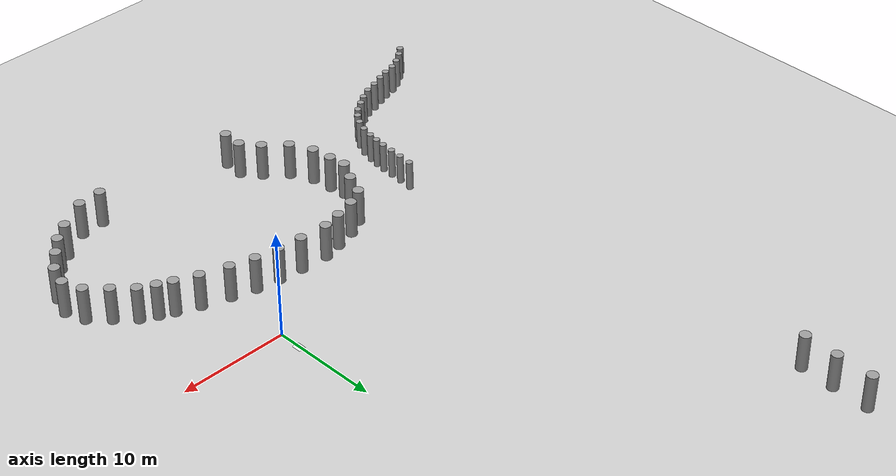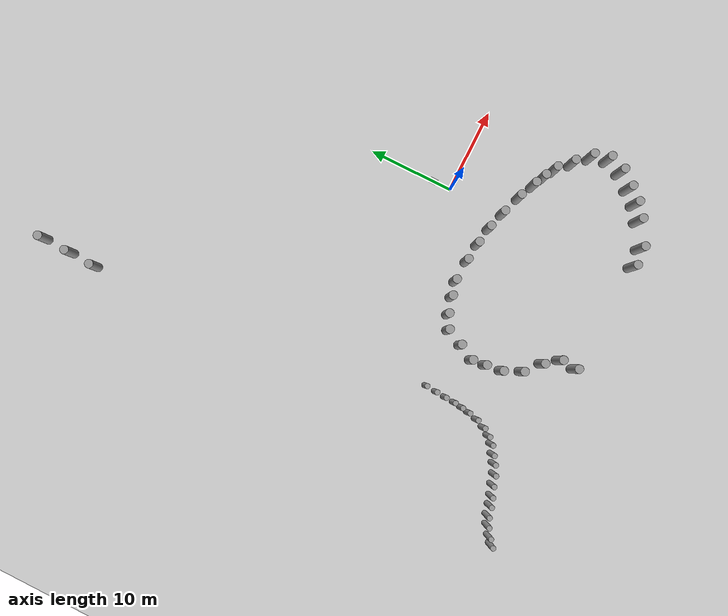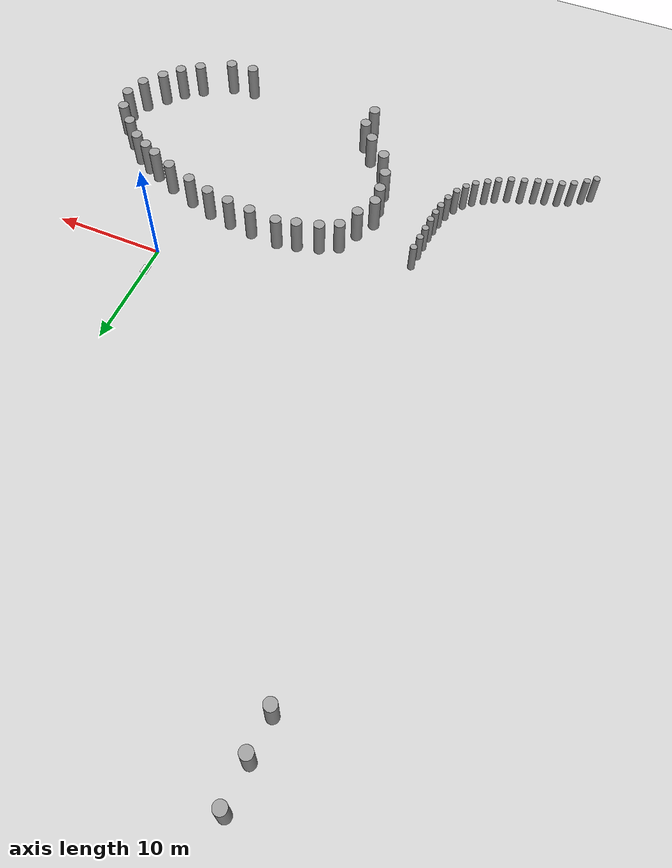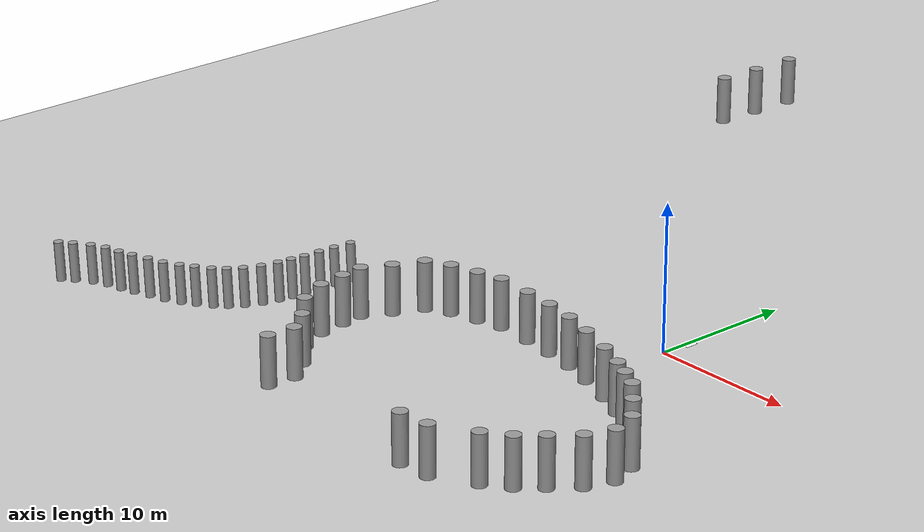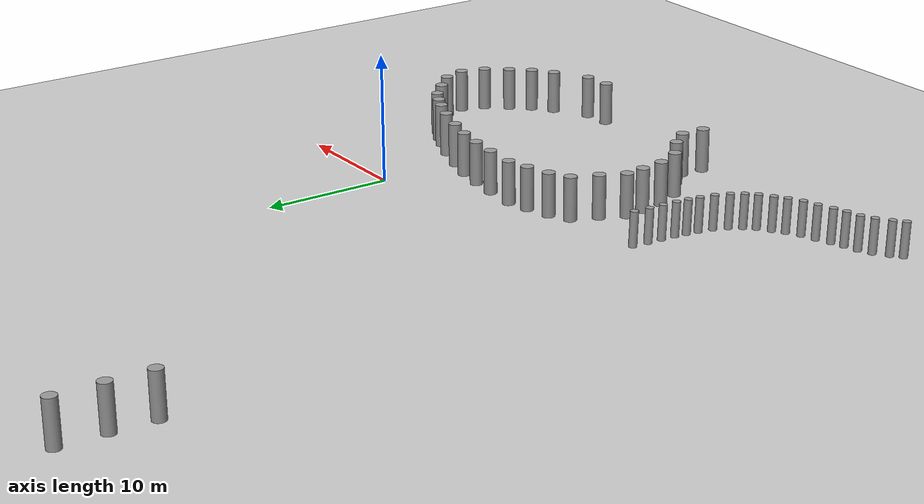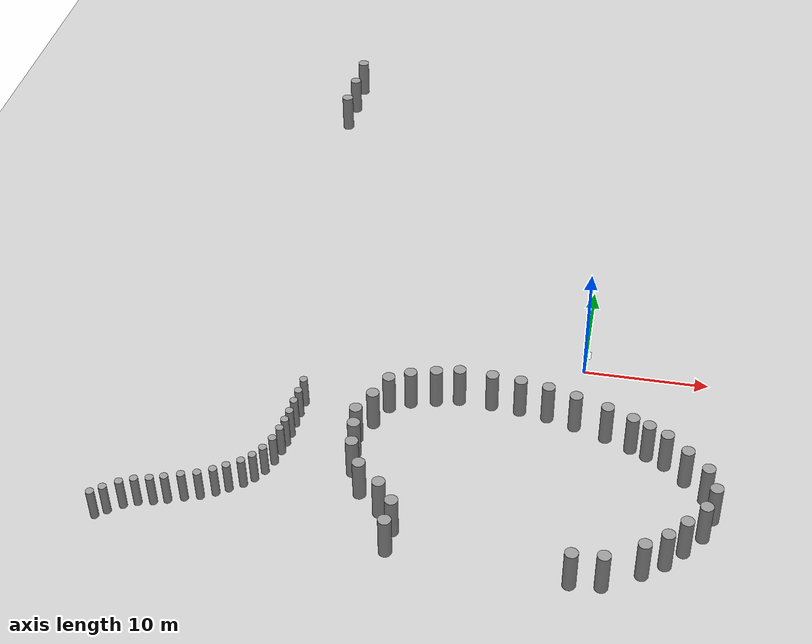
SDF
<sdf version="1.7">
 <world name="default">
  <model name="ground_plane">
   <static>1</static>
   <link name="link">
    <collision name="collision">
     <geometry><plane><normal>0 0 1</normal><size>100 100</size></plane></geometry>
     <surface>
      <contact><collide_bitmask>65535</collide_bitmask></contact>
      <friction><ode><mu>100</mu><mu2>50</mu2></ode></friction>
     </surface>
    </collision>
    <visual name="visual">
     <cast_shadows>0</cast_shadows>
     <geometry><plane><normal>0 0 1</normal><size>100 100</size></plane></geometry>
     <material>
      <script><uri>file://media/materials/scripts/gazebo.material</uri><name>Gazebo/Grey</name></script>
     </material>
    </visual>
   </link>
  </model>
  <model name="aruco_default">
   <static>1</static>
   <link name="aruco_link">
    <visual name="aruco_visual">
     <geometry><plane><normal>0 0 1</normal><size>0.68 0.9</size></plane></geometry>
     <material>
      <diffuse>1 1 1 1</diffuse>
      <specular>0.4 0.4 0.4 1</specular>
      <pbr><metal><albedo_map>materials/textures/pattern.png</albedo_map></metal></pbr>
     </material>
    </visual>
   </link>
   <pose>0.057366 2.14573 0 0 -0 0</pose>
  </model>
  <model name="unit_cylinder_clone_0_clone_37">
   <pose>-12.2662 -21.3267 1.7077 0 -0 -7e-06</pose>
   <link name="link">
    <inertial>
     <mass>1</mass>
     <inertia><ixx>0.145833</ixx><ixy>0</ixy><ixz>0</ixz><iyy>0.145833</iyy><iyz>0</iyz><izz>0.125</izz></inertia>
    </inertial>
    <collision name="collision">
     <geometry><cylinder><radius>0.5</radius><length>3.4154</length></cylinder></geometry>
    </collision>
    <visual name="visual">
     <geometry><cylinder><radius>0.5</radius><length>3.4154</length></cylinder></geometry>
     <material>
      <script><name>Gazebo/Grey</name><uri>file://media/materials/scripts/gazebo.material</uri></script>
     </material>
    </visual>
   </link>
  </model>
  <model name="unit_cylinder_clone_0_clone_39">
   <pose>-12.1496 -19.3923 1.7077 0 -0 -2.6e-05</pose>
   <link name="link">
    <inertial>
     <mass>1</mass>
     <inertia><ixx>0.145833</ixx><ixy>0</ixy><ixz>0</ixz><iyy>0.145833</iyy><iyz>0</iyz><izz>0.125</izz></inertia>
    </inertial>
    <collision name="collision">
     <geometry><cylinder><radius>0.5</radius><length>3.4154</length></cylinder></geometry>
    </collision>
    <visual name="visual">
     <geometry><cylinder><radius>0.5</radius><length>3.4154</length></cylinder></geometry>
     <material>
      <script><name>Gazebo/Grey</name><uri>file://media/materials/scripts/gazebo.material</uri></script>
     </material>
    </visual>
   </link>
  </model>
  <model name="unit_cylinder_clone_0_clone_42">
   <pose>0.987359 -22.1201 1.7077 0 -0 -2.1e-05</pose>
   <link name="link">
    <inertial>
     <mass>1</mass>
     <inertia><ixx>0.145833</ixx><ixy>0</ixy><ixz>0</ixz><iyy>0.145833</iyy><iyz>0</iyz><izz>0.125</izz></inertia>
    </inertial>
    <collision name="collision">
     <geometry><cylinder><radius>0.5</radius><length>3.4154</length></cylinder></geometry>
    </collision>
    <visual name="visual">
     <geometry><cylinder><radius>0.5</radius><length>3.4154</length></cylinder></geometry>
     <material>
      <script><name>Gazebo/Grey</name><uri>file://media/materials/scripts/gazebo.material</uri></script>
     </material>
    </visual>
   </link>
  </model>
  <model name="unit_cylinder_clone_0_clone_43">
   <pose>-13.3909 -17.7902 1.7077 0 -0 -7e-06</pose>
   <link name="link">
    <inertial>
     <mass>1</mass>
     <inertia><ixx>0.145833</ixx><ixy>0</ixy><ixz>0</ixz><iyy>0.145833</iyy><iyz>0</iyz><izz>0.125</izz></inertia>
    </inertial>
    <collision name="collision">
     <geometry><cylinder><radius>0.5</radius><length>3.4154</length></cylinder></geometry>
    </collision>
    <visual name="visual">
     <geometry><cylinder><radius>0.5</radius><length>3.4154</length></cylinder></geometry>
     <material>
      <script><name>Gazebo/Grey</name><uri>file://media/materials/scripts/gazebo.material</uri></script>
     </material>
    </visual>
   </link>
  </model>
  <model name="unit_cylinder_clone_0_clone_44">
   <pose>-15.1916 -16.1591 1.7077 0 -0 -5e-06</pose>
   <link name="link">
    <inertial>
     <mass>1</mass>
     <inertia><ixx>0.145833</ixx><ixy>0</ixy><ixz>0</ixz><iyy>0.145833</iyy><iyz>0</iyz><izz>0.125</izz></inertia>
    </inertial>
    <collision name="collision">
     <geometry><cylinder><radius>0.5</radius><length>3.4154</length></cylinder></geometry>
    </collision>
    <visual name="visual">
     <geometry><cylinder><radius>0.5</radius><length>3.4154</length></cylinder></geometry>
     <material>
      <script><name>Gazebo/Grey</name><uri>file://media/materials/scripts/gazebo.material</uri></script>
     </material>
    </visual>
   </link>
  </model>
  <model name="unit_cylinder_clone_0_clone_45">
   <pose>-16.1365 -14.0923 1.7077 0 -0 -1e-06</pose>
   <link name="link">
    <inertial>
     <mass>1</mass>
     <inertia><ixx>0.145833</ixx><ixy>0</ixy><ixz>0</ixz><iyy>0.145833</iyy><iyz>0</iyz><izz>0.125</izz></inertia>
    </inertial>
    <collision name="collision">
     <geometry><cylinder><radius>0.5</radius><length>3.4154</length></cylinder></geometry>
    </collision>
    <visual name="visual">
     <geometry><cylinder><radius>0.5</radius><length>3.4154</length></cylinder></geometry>
     <material>
      <script><name>Gazebo/Grey</name><uri>file://media/materials/scripts/gazebo.material</uri></script>
     </material>
    </visual>
   </link>
  </model>
  <model name="unit_cylinder_clone_0_clone_46">
   <pose>-16.3959 -12.1554 1.7077 0 -0 -2.7e-05</pose>
   <link name="link">
    <inertial>
     <mass>1</mass>
     <inertia><ixx>0.145833</ixx><ixy>0</ixy><ixz>0</ixz><iyy>0.145833</iyy><iyz>0</iyz><izz>0.125</izz></inertia>
    </inertial>
    <collision name="collision">
     <geometry><cylinder><radius>0.5</radius><length>3.4154</length></cylinder></geometry>
    </collision>
    <visual name="visual">
     <geometry><cylinder><radius>0.5</radius><length>3.4154</length></cylinder></geometry>
     <material>
      <script><name>Gazebo/Grey</name><uri>file://media/materials/scripts/gazebo.material</uri></script>
     </material>
    </visual>
   </link>
  </model>
  <model name="unit_cylinder_clone_0_clone_47">
   <pose>-16.5689 -10.5585 1.7077 0 -0 -3.4e-05</pose>
   <link name="link">
    <inertial>
     <mass>1</mass>
     <inertia><ixx>0.145833</ixx><ixy>0</ixy><ixz>0</ixz><iyy>0.145833</iyy><iyz>0</iyz><izz>0.125</izz></inertia>
    </inertial>
    <collision name="collision">
     <geometry><cylinder><radius>0.5</radius><length>3.4154</length></cylinder></geometry>
    </collision>
    <visual name="visual">
     <geometry><cylinder><radius>0.5</radius><length>3.4154</length></cylinder></geometry>
     <material>
      <script><name>Gazebo/Grey</name><uri>file://media/materials/scripts/gazebo.material</uri></script>
     </material>
    </visual>
   </link>
  </model>
  <model name="unit_cylinder_clone_0_clone_48">
   <pose>-15.6165 -8.73278 1.7077 0 -0 -1.9e-05</pose>
   <link name="link">
    <inertial>
     <mass>1</mass>
     <inertia><ixx>0.145833</ixx><ixy>0</ixy><ixz>0</ixz><iyy>0.145833</iyy><iyz>0</iyz><izz>0.125</izz></inertia>
    </inertial>
    <collision name="collision">
     <geometry><cylinder><radius>0.5</radius><length>3.4154</length></cylinder></geometry>
    </collision>
    <visual name="visual">
     <geometry><cylinder><radius>0.5</radius><length>3.4154</length></cylinder></geometry>
     <material>
      <script><name>Gazebo/Grey</name><uri>file://media/materials/scripts/gazebo.material</uri></script>
     </material>
    </visual>
   </link>
  </model>
  <model name="unit_cylinder_clone_0_clone_49">
   <pose>3.22404 -21.9689 1.7077 0 -0 -2.4e-05</pose>
   <link name="link">
    <inertial>
     <mass>1</mass>
     <inertia><ixx>0.145833</ixx><ixy>0</ixy><ixz>0</ixz><iyy>0.145833</iyy><iyz>0</iyz><izz>0.125</izz></inertia>
    </inertial>
    <collision name="collision">
     <geometry><cylinder><radius>0.5</radius><length>3.4154</length></cylinder></geometry>
    </collision>
    <visual name="visual">
     <geometry><cylinder><radius>0.5</radius><length>3.4154</length></cylinder></geometry>
     <material>
      <script><name>Gazebo/Grey</name><uri>file://media/materials/scripts/gazebo.material</uri></script>
     </material>
    </visual>
   </link>
  </model>
  <model name="unit_cylinder_clone_0_clone_50">
   <pose>5.93468 -20.4274 1.7077 0 -0 -2.3e-05</pose>
   <link name="link">
    <inertial>
     <mass>1</mass>
     <inertia><ixx>0.145833</ixx><ixy>0</ixy><ixz>0</ixz><iyy>0.145833</iyy><iyz>0</iyz><izz>0.125</izz></inertia>
    </inertial>
    <collision name="collision">
     <geometry><cylinder><radius>0.5</radius><length>3.4154</length></cylinder></geometry>
    </collision>
    <visual name="visual">
     <geometry><cylinder><radius>0.5</radius><length>3.4154</length></cylinder></geometry>
     <material>
      <script><name>Gazebo/Grey</name><uri>file://media/materials/scripts/gazebo.material</uri></script>
     </material>
    </visual>
   </link>
  </model>
  <model name="unit_cylinder_clone_0_clone_51">
   <pose>7.49589 -19.269 1.7077 0 -0 -3.3e-05</pose>
   <link name="link">
    <inertial>
     <mass>1</mass>
     <inertia><ixx>0.145833</ixx><ixy>0</ixy><ixz>0</ixz><iyy>0.145833</iyy><iyz>0</iyz><izz>0.125</izz></inertia>
    </inertial>
    <collision name="collision">
     <geometry><cylinder><radius>0.5</radius><length>3.4154</length></cylinder></geometry>
    </collision>
    <visual name="visual">
     <geometry><cylinder><radius>0.5</radius><length>3.4154</length></cylinder></geometry>
     <material>
      <script><name>Gazebo/Grey</name><uri>file://media/materials/scripts/gazebo.material</uri></script>
     </material>
    </visual>
   </link>
  </model>
  <model name="unit_cylinder_clone_0_clone_52">
   <pose>8.7415 -17.8501 1.7077 0 -0 -7e-06</pose>
   <link name="link">
    <inertial>
     <mass>1</mass>
     <inertia><ixx>0.145833</ixx><ixy>0</ixy><ixz>0</ixz><iyy>0.145833</iyy><iyz>0</iyz><izz>0.125</izz></inertia>
    </inertial>
    <collision name="collision">
     <geometry><cylinder><radius>0.5</radius><length>3.4154</length></cylinder></geometry>
    </collision>
    <visual name="visual">
     <geometry><cylinder><radius>0.5</radius><length>3.4154</length></cylinder></geometry>
     <material>
      <script><name>Gazebo/Grey</name><uri>file://media/materials/scripts/gazebo.material</uri></script>
     </material>
    </visual>
   </link>
  </model>
  <model name="unit_cylinder_clone_0_clone_53">
   <pose>10.0501 -16.2276 1.7077 0 -0 -1.5e-05</pose>
   <link name="link">
    <inertial>
     <mass>1</mass>
     <inertia><ixx>0.145833</ixx><ixy>0</ixy><ixz>0</ixz><iyy>0.145833</iyy><iyz>0</iyz><izz>0.125</izz></inertia>
    </inertial>
    <collision name="collision">
     <geometry><cylinder><radius>0.5</radius><length>3.4154</length></cylinder></geometry>
    </collision>
    <visual name="visual">
     <geometry><cylinder><radius>0.5</radius><length>3.4154</length></cylinder></geometry>
     <material>
      <script><name>Gazebo/Grey</name><uri>file://media/materials/scripts/gazebo.material</uri></script>
     </material>
    </visual>
   </link>
  </model>
  <model name="unit_cylinder_clone_0_clone_54">
   <pose>10.6912 -14.3447 1.7077 0 -0 -2.3e-05</pose>
   <link name="link">
    <inertial>
     <mass>1</mass>
     <inertia><ixx>0.145833</ixx><ixy>0</ixy><ixz>0</ixz><iyy>0.145833</iyy><iyz>0</iyz><izz>0.125</izz></inertia>
    </inertial>
    <collision name="collision">
     <geometry><cylinder><radius>0.5</radius><length>3.4154</length></cylinder></geometry>
    </collision>
    <visual name="visual">
     <geometry><cylinder><radius>0.5</radius><length>3.4154</length></cylinder></geometry>
     <material>
      <script><name>Gazebo/Grey</name><uri>file://media/materials/scripts/gazebo.material</uri></script>
     </material>
    </visual>
   </link>
  </model>
  <model name="unit_cylinder_clone_0_clone_55">
   <pose>10.0635 -12.4691 1.7077 0 -0 -2.3e-05</pose>
   <link name="link">
    <inertial>
     <mass>1</mass>
     <inertia><ixx>0.145833</ixx><ixy>0</ixy><ixz>0</ixz><iyy>0.145833</iyy><iyz>0</iyz><izz>0.125</izz></inertia>
    </inertial>
    <collision name="collision">
     <geometry><cylinder><radius>0.5</radius><length>3.4154</length></cylinder></geometry>
    </collision>
    <visual name="visual">
     <geometry><cylinder><radius>0.5</radius><length>3.4154</length></cylinder></geometry>
     <material>
      <script><name>Gazebo/Grey</name><uri>file://media/materials/scripts/gazebo.material</uri></script>
     </material>
    </visual>
   </link>
  </model>
  <model name="unit_cylinder_clone_0_clone_56">
   <pose>8.49972 -10.9151 1.7077 0 -0 -1.6e-05</pose>
   <link name="link">
    <inertial>
     <mass>1</mass>
     <inertia><ixx>0.145833</ixx><ixy>0</ixy><ixz>0</ixz><iyy>0.145833</iyy><iyz>0</iyz><izz>0.125</izz></inertia>
    </inertial>
    <collision name="collision">
     <geometry><cylinder><radius>0.5</radius><length>3.4154</length></cylinder></geometry>
    </collision>
    <visual name="visual">
     <geometry><cylinder><radius>0.5</radius><length>3.4154</length></cylinder></geometry>
     <material>
      <script><name>Gazebo/Grey</name><uri>file://media/materials/scripts/gazebo.material</uri></script>
     </material>
    </visual>
   </link>
  </model>
  <model name="unit_cylinder_clone_0_clone_57">
   <pose>6.92818 -9.46304 1.7077 0 -0 -1.9e-05</pose>
   <link name="link">
    <inertial>
     <mass>1</mass>
     <inertia><ixx>0.145833</ixx><ixy>0</ixy><ixz>0</ixz><iyy>0.145833</iyy><iyz>0</iyz><izz>0.125</izz></inertia>
    </inertial>
    <collision name="collision">
     <geometry><cylinder><radius>0.5</radius><length>3.4154</length></cylinder></geometry>
    </collision>
    <visual name="visual">
     <geometry><cylinder><radius>0.5</radius><length>3.4154</length></cylinder></geometry>
     <material>
      <script><name>Gazebo/Grey</name><uri>file://media/materials/scripts/gazebo.material</uri></script>
     </material>
    </visual>
   </link>
  </model>
  <model name="unit_cylinder_clone_0_clone_58">
   <pose>-14.7328 -6.78153 1.7077 0 -0 -2.1e-05</pose>
   <link name="link">
    <inertial>
     <mass>1</mass>
     <inertia><ixx>0.145833</ixx><ixy>0</ixy><ixz>0</ixz><iyy>0.145833</iyy><iyz>0</iyz><izz>0.125</izz></inertia>
    </inertial>
    <collision name="collision">
     <geometry><cylinder><radius>0.5</radius><length>3.4154</length></cylinder></geometry>
    </collision>
    <visual name="visual">
     <geometry><cylinder><radius>0.5</radius><length>3.4154</length></cylinder></geometry>
     <material>
      <script><name>Gazebo/Grey</name><uri>file://media/materials/scripts/gazebo.material</uri></script>
     </material>
    </visual>
   </link>
  </model>
  <model name="unit_cylinder_clone_0_clone_59">
   <pose>-13.1482 -5.97424 1.7077 0 -0 -2.3e-05</pose>
   <link name="link">
    <inertial>
     <mass>1</mass>
     <inertia><ixx>0.145833</ixx><ixy>0</ixy><ixz>0</ixz><iyy>0.145833</iyy><iyz>0</iyz><izz>0.125</izz></inertia>
    </inertial>
    <collision name="collision">
     <geometry><cylinder><radius>0.5</radius><length>3.4154</length></cylinder></geometry>
    </collision>
    <visual name="visual">
     <geometry><cylinder><radius>0.5</radius><length>3.4154</length></cylinder></geometry>
     <material>
      <script><name>Gazebo/Grey</name><uri>file://media/materials/scripts/gazebo.material</uri></script>
     </material>
    </visual>
   </link>
  </model>
  <model name="unit_cylinder_clone_0_clone_60">
   <pose>-11.2097 -5.44102 1.7077 0 -0 -2.1e-05</pose>
   <link name="link">
    <inertial>
     <mass>1</mass>
     <inertia><ixx>0.145833</ixx><ixy>0</ixy><ixz>0</ixz><iyy>0.145833</iyy><iyz>0</iyz><izz>0.125</izz></inertia>
    </inertial>
    <collision name="collision">
     <geometry><cylinder><radius>0.5</radius><length>3.4154</length></cylinder></geometry>
    </collision>
    <visual name="visual">
     <geometry><cylinder><radius>0.5</radius><length>3.4154</length></cylinder></geometry>
     <material>
      <script><name>Gazebo/Grey</name><uri>file://media/materials/scripts/gazebo.material</uri></script>
     </material>
    </visual>
   </link>
  </model>
  <model name="unit_cylinder_clone_0_clone_61">
   <pose>-9.41878 -5.0312 1.7077 0 -0 -2.1e-05</pose>
   <link name="link">
    <inertial>
     <mass>1</mass>
     <inertia><ixx>0.145833</ixx><ixy>0</ixy><ixz>0</ixz><iyy>0.145833</iyy><iyz>0</iyz><izz>0.125</izz></inertia>
    </inertial>
    <collision name="collision">
     <geometry><cylinder><radius>0.5</radius><length>3.4154</length></cylinder></geometry>
    </collision>
    <visual name="visual">
     <geometry><cylinder><radius>0.5</radius><length>3.4154</length></cylinder></geometry>
     <material>
      <script><name>Gazebo/Grey</name><uri>file://media/materials/scripts/gazebo.material</uri></script>
     </material>
    </visual>
   </link>
  </model>
  <model name="unit_cylinder_clone_0_clone_62">
   <pose>-6.82545 -5.18358 1.7077 0 -0 -1.5e-05</pose>
   <link name="link">
    <inertial>
     <mass>1</mass>
     <inertia><ixx>0.145833</ixx><ixy>0</ixy><ixz>0</ixz><iyy>0.145833</iyy><iyz>0</iyz><izz>0.125</izz></inertia>
    </inertial>
    <collision name="collision">
     <geometry><cylinder><radius>0.5</radius><length>3.4154</length></cylinder></geometry>
    </collision>
    <visual name="visual">
     <geometry><cylinder><radius>0.5</radius><length>3.4154</length></cylinder></geometry>
     <material>
      <script><name>Gazebo/Grey</name><uri>file://media/materials/scripts/gazebo.material</uri></script>
     </material>
    </visual>
   </link>
  </model>
  <model name="unit_cylinder_clone_0_clone_63">
   <pose>-4.57364 -5.42276 1.7077 0 -0 -1.7e-05</pose>
   <link name="link">
    <inertial>
     <mass>1</mass>
     <inertia><ixx>0.145833</ixx><ixy>0</ixy><ixz>0</ixz><iyy>0.145833</iyy><iyz>0</iyz><izz>0.125</izz></inertia>
    </inertial>
    <collision name="collision">
     <geometry><cylinder><radius>0.5</radius><length>3.4154</length></cylinder></geometry>
    </collision>
    <visual name="visual">
     <geometry><cylinder><radius>0.5</radius><length>3.4154</length></cylinder></geometry>
     <material>
      <script><name>Gazebo/Grey</name><uri>file://media/materials/scripts/gazebo.material</uri></script>
     </material>
    </visual>
   </link>
  </model>
  <model name="unit_cylinder_clone_0_clone_64">
   <pose>-2.37186 -5.79405 1.7077 0 -0 -7e-06</pose>
   <link name="link">
    <inertial>
     <mass>1</mass>
     <inertia><ixx>0.145833</ixx><ixy>0</ixy><ixz>0</ixz><iyy>0.145833</iyy><iyz>0</iyz><izz>0.125</izz></inertia>
    </inertial>
    <collision name="collision">
     <geometry><cylinder><radius>0.5</radius><length>3.4154</length></cylinder></geometry>
    </collision>
    <visual name="visual">
     <geometry><cylinder><radius>0.5</radius><length>3.4154</length></cylinder></geometry>
     <material>
      <script><name>Gazebo/Grey</name><uri>file://media/materials/scripts/gazebo.material</uri></script>
     </material>
    </visual>
   </link>
  </model>
  <model name="unit_cylinder_clone_0_clone_65">
   <pose>-0.18135 -6.42753 1.7077 0 -0 -2e-06</pose>
   <link name="link">
    <inertial>
     <mass>1</mass>
     <inertia><ixx>0.145833</ixx><ixy>0</ixy><ixz>0</ixz><iyy>0.145833</iyy><iyz>0</iyz><izz>0.125</izz></inertia>
    </inertial>
    <collision name="collision">
     <geometry><cylinder><radius>0.5</radius><length>3.4154</length></cylinder></geometry>
    </collision>
    <visual name="visual">
     <geometry><cylinder><radius>0.5</radius><length>3.4154</length></cylinder></geometry>
     <material>
      <script><name>Gazebo/Grey</name><uri>file://media/materials/scripts/gazebo.material</uri></script>
     </material>
    </visual>
   </link>
  </model>
  <model name="unit_cylinder_clone_0_clone_66">
   <pose>2.29234 -7.25771 1.7077 0 -0 -1.6e-05</pose>
   <link name="link">
    <inertial>
     <mass>1</mass>
     <inertia><ixx>0.145833</ixx><ixy>0</ixy><ixz>0</ixz><iyy>0.145833</iyy><iyz>0</iyz><izz>0.125</izz></inertia>
    </inertial>
    <collision name="collision">
     <geometry><cylinder><radius>0.5</radius><length>3.4154</length></cylinder></geometry>
    </collision>
    <visual name="visual">
     <geometry><cylinder><radius>0.5</radius><length>3.4154</length></cylinder></geometry>
     <material>
      <script><name>Gazebo/Grey</name><uri>file://media/materials/scripts/gazebo.material</uri></script>
     </material>
    </visual>
   </link>
  </model>
  <model name="unit_cylinder_clone_0_clone_67">
   <pose>4.27928 -8.10995 1.7077 0 -0 -2.4e-05</pose>
   <link name="link">
    <inertial>
     <mass>1</mass>
     <inertia><ixx>0.145833</ixx><ixy>0</ixy><ixz>0</ixz><iyy>0.145833</iyy><iyz>0</iyz><izz>0.125</izz></inertia>
    </inertial>
    <collision name="collision">
     <geometry><cylinder><radius>0.5</radius><length>3.4154</length></cylinder></geometry>
    </collision>
    <visual name="visual">
     <geometry><cylinder><radius>0.5</radius><length>3.4154</length></cylinder></geometry>
     <material>
      <script><name>Gazebo/Grey</name><uri>file://media/materials/scripts/gazebo.material</uri></script>
     </material>
    </visual>
   </link>
  </model>
  <model name="unit_cylinder_clone_0_clone_68">
   <pose>5.54014 -8.70017 1.7077 0 -0 -3.7e-05</pose>
   <link name="link">
    <inertial>
     <mass>1</mass>
     <inertia><ixx>0.145833</ixx><ixy>0</ixy><ixz>0</ixz><iyy>0.145833</iyy><iyz>0</iyz><izz>0.125</izz></inertia>
    </inertial>
    <collision name="collision">
     <geometry><cylinder><radius>0.5</radius><length>3.4154</length></cylinder></geometry>
    </collision>
    <visual name="visual">
     <geometry><cylinder><radius>0.5</radius><length>3.4154</length></cylinder></geometry>
     <material>
      <script><name>Gazebo/Grey</name><uri>file://media/materials/scripts/gazebo.material</uri></script>
     </material>
    </visual>
   </link>
  </model>
  <model name="unit_cylinder_clone_0_clone_59_clone">
   <pose>-26.076 35.0591 1.7077 0 -0 -1.5e-05</pose>
   <link name="link">
    <inertial>
     <mass>1</mass>
     <inertia><ixx>0.145833</ixx><ixy>0</ixy><ixz>0</ixz><iyy>0.145833</iyy><iyz>0</iyz><izz>0.125</izz></inertia>
    </inertial>
    <collision name="collision">
     <geometry><cylinder><radius>0.5</radius><length>3.4154</length></cylinder></geometry>
    </collision>
    <visual name="visual">
     <geometry><cylinder><radius>0.5</radius><length>3.4154</length></cylinder></geometry>
     <material>
      <script><name>Gazebo/Grey</name><uri>file://media/materials/scripts/gazebo.material</uri></script>
     </material>
    </visual>
   </link>
  </model>
  <model name="unit_cylinder_clone_0_clone_59_clone_clone">
   <pose>-26.2266 31.9009 1.7077 0 -0 -1.7e-05</pose>
   <link name="link">
    <inertial>
     <mass>1</mass>
     <inertia><ixx>0.145833</ixx><ixy>0</ixy><ixz>0</ixz><iyy>0.145833</iyy><iyz>0</iyz><izz>0.125</izz></inertia>
    </inertial>
    <collision name="collision">
     <geometry><cylinder><radius>0.5</radius><length>3.4154</length></cylinder></geometry>
    </collision>
    <visual name="visual">
     <geometry><cylinder><radius>0.5</radius><length>3.4154</length></cylinder></geometry>
     <material>
      <script><name>Gazebo/Grey</name><uri>file://media/materials/scripts/gazebo.material</uri></script>
     </material>
    </visual>
   </link>
  </model>
  <model name="unit_cylinder_clone_0_clone_59_clone_clone_0">
   <pose>-25.9839 38.4317 1.7077 0 -0 -1.5e-05</pose>
   <link name="link">
    <inertial>
     <mass>1</mass>
     <inertia><ixx>0.145833</ixx><ixy>0</ixy><ixz>0</ixz><iyy>0.145833</iyy><iyz>0</iyz><izz>0.125</izz></inertia>
    </inertial>
    <collision name="collision">
     <geometry><cylinder><radius>0.5</radius><length>3.4154</length></cylinder></geometry>
    </collision>
    <visual name="visual">
     <geometry><cylinder><radius>0.5</radius><length>3.4154</length></cylinder></geometry>
     <material>
      <script><name>Gazebo/Grey</name><uri>file://media/materials/scripts/gazebo.material</uri></script>
     </material>
    </visual>
   </link>
  </model>
  <model name="unit_cylinder_0">
   <pose>-21.3905 -7.38747 1.36387 0.035053 -0.003363 -0.057875</pose>
   <link name="link">
    <inertial>
     <mass>1</mass>
     <inertia><ixx>0.145833</ixx><ixy>0</ixy><ixz>0</ixz><iyy>0.145833</iyy><iyz>0</iyz><izz>0.125</izz></inertia>
    </inertial>
    <collision name="collision">
     <geometry><cylinder><radius>0.312533</radius><length>2.71094</length></cylinder></geometry>
    </collision>
    <visual name="visual">
     <geometry><cylinder><radius>0.312533</radius><length>2.71094</length></cylinder></geometry>
     <material>
      <script><name>Gazebo/Grey</name><uri>file://media/materials/scripts/gazebo.material</uri></script>
     </material>
    </visual>
   </link>
  </model>
  <model name="unit_cylinder_0_clone">
   <pose>-21.5056 -8.66994 1.36387 0.035053 -0.003363 -0.057875</pose>
   <link name="link">
    <inertial>
     <mass>1</mass>
     <inertia><ixx>0.145833</ixx><ixy>0</ixy><ixz>0</ixz><iyy>0.145833</iyy><iyz>0</iyz><izz>0.125</izz></inertia>
    </inertial>
    <collision name="collision">
     <geometry><cylinder><radius>0.312533</radius><length>2.71094</length></cylinder></geometry>
    </collision>
    <visual name="visual">
     <geometry><cylinder><radius>0.312533</radius><length>2.71094</length></cylinder></geometry>
     <material>
      <script><name>Gazebo/Grey</name><uri>file://media/materials/scripts/gazebo.material</uri></script>
     </material>
    </visual>
   </link>
  </model>
  <model name="unit_cylinder_0_clone_0">
   <pose>-21.5851 -9.83189 1.36387 0.035053 -0.003363 -0.057875</pose>
   <link name="link">
    <inertial>
     <mass>1</mass>
     <inertia><ixx>0.145833</ixx><ixy>0</ixy><ixz>0</ixz><iyy>0.145833</iyy><iyz>0</iyz><izz>0.125</izz></inertia>
    </inertial>
    <collision name="collision">
     <geometry><cylinder><radius>0.312533</radius><length>2.71094</length></cylinder></geometry>
    </collision>
    <visual name="visual">
     <geometry><cylinder><radius>0.312533</radius><length>2.71094</length></cylinder></geometry>
     <material>
      <script><name>Gazebo/Grey</name><uri>file://media/materials/scripts/gazebo.material</uri></script>
     </material>
    </visual>
   </link>
  </model>
  <model name="unit_cylinder_0_clone_1">
   <pose>-21.6549 -10.9893 1.36387 0.035053 -0.003363 -0.057875</pose>
   <link name="link">
    <inertial>
     <mass>1</mass>
     <inertia><ixx>0.145833</ixx><ixy>0</ixy><ixz>0</ixz><iyy>0.145833</iyy><iyz>0</iyz><izz>0.125</izz></inertia>
    </inertial>
    <collision name="collision">
     <geometry><cylinder><radius>0.312533</radius><length>2.71094</length></cylinder></geometry>
    </collision>
    <visual name="visual">
     <geometry><cylinder><radius>0.312533</radius><length>2.71094</length></cylinder></geometry>
     <material>
      <script><name>Gazebo/Grey</name><uri>file://media/materials/scripts/gazebo.material</uri></script>
     </material>
    </visual>
   </link>
  </model>
  <model name="unit_cylinder_0_clone_2">
   <pose>-21.7804 -11.9647 1.36387 0.035053 -0.003363 -0.057875</pose>
   <link name="link">
    <inertial>
     <mass>1</mass>
     <inertia><ixx>0.145833</ixx><ixy>0</ixy><ixz>0</ixz><iyy>0.145833</iyy><iyz>0</iyz><izz>0.125</izz></inertia>
    </inertial>
    <collision name="collision">
     <geometry><cylinder><radius>0.312533</radius><length>2.71094</length></cylinder></geometry>
    </collision>
    <visual name="visual">
     <geometry><cylinder><radius>0.312533</radius><length>2.71094</length></cylinder></geometry>
     <material>
      <script><name>Gazebo/Grey</name><uri>file://media/materials/scripts/gazebo.material</uri></script>
     </material>
    </visual>
   </link>
  </model>
  <model name="unit_cylinder_0_clone_3">
   <pose>-21.9376 -12.9248 1.36387 0.035053 -0.003363 -0.057875</pose>
   <link name="link">
    <inertial>
     <mass>1</mass>
     <inertia><ixx>0.145833</ixx><ixy>0</ixy><ixz>0</ixz><iyy>0.145833</iyy><iyz>0</iyz><izz>0.125</izz></inertia>
    </inertial>
    <collision name="collision">
     <geometry><cylinder><radius>0.312533</radius><length>2.71094</length></cylinder></geometry>
    </collision>
    <visual name="visual">
     <geometry><cylinder><radius>0.312533</radius><length>2.71094</length></cylinder></geometry>
     <material>
      <script><name>Gazebo/Grey</name><uri>file://media/materials/scripts/gazebo.material</uri></script>
     </material>
    </visual>
   </link>
  </model>
  <model name="unit_cylinder_0_clone_4">
   <pose>-22.2181 -14.0645 1.36387 0.035053 -0.003363 -0.057875</pose>
   <link name="link">
    <inertial>
     <mass>1</mass>
     <inertia><ixx>0.145833</ixx><ixy>0</ixy><ixz>0</ixz><iyy>0.145833</iyy><iyz>0</iyz><izz>0.125</izz></inertia>
    </inertial>
    <collision name="collision">
     <geometry><cylinder><radius>0.312533</radius><length>2.71094</length></cylinder></geometry>
    </collision>
    <visual name="visual">
     <geometry><cylinder><radius>0.312533</radius><length>2.71094</length></cylinder></geometry>
     <material>
      <script><name>Gazebo/Grey</name><uri>file://media/materials/scripts/gazebo.material</uri></script>
     </material>
    </visual>
   </link>
  </model>
  <model name="unit_cylinder_0_clone_5">
   <pose>-22.6809 -15.1356 1.36387 0.035053 -0.003363 -0.057875</pose>
   <link name="link">
    <inertial>
     <mass>1</mass>
     <inertia><ixx>0.145833</ixx><ixy>0</ixy><ixz>0</ixz><iyy>0.145833</iyy><iyz>0</iyz><izz>0.125</izz></inertia>
    </inertial>
    <collision name="collision">
     <geometry><cylinder><radius>0.312533</radius><length>2.71094</length></cylinder></geometry>
    </collision>
    <visual name="visual">
     <geometry><cylinder><radius>0.312533</radius><length>2.71094</length></cylinder></geometry>
     <material>
      <script><name>Gazebo/Grey</name><uri>file://media/materials/scripts/gazebo.material</uri></script>
     </material>
    </visual>
   </link>
  </model>
  <model name="unit_cylinder_0_clone_6">
   <pose>-23.2651 -16.0115 1.36387 0.035053 -0.003363 -0.057875</pose>
   <link name="link">
    <inertial>
     <mass>1</mass>
     <inertia><ixx>0.145833</ixx><ixy>0</ixy><ixz>0</ixz><iyy>0.145833</iyy><iyz>0</iyz><izz>0.125</izz></inertia>
    </inertial>
    <collision name="collision">
     <geometry><cylinder><radius>0.312533</radius><length>2.71094</length></cylinder></geometry>
    </collision>
    <visual name="visual">
     <geometry><cylinder><radius>0.312533</radius><length>2.71094</length></cylinder></geometry>
     <material>
      <script><name>Gazebo/Grey</name><uri>file://media/materials/scripts/gazebo.material</uri></script>
     </material>
    </visual>
   </link>
  </model>
  <model name="unit_cylinder_0_clone_7">
   <pose>-23.9428 -16.7146 1.36387 0.035053 -0.003363 -0.057875</pose>
   <link name="link">
    <inertial>
     <mass>1</mass>
     <inertia><ixx>0.145833</ixx><ixy>0</ixy><ixz>0</ixz><iyy>0.145833</iyy><iyz>0</iyz><izz>0.125</izz></inertia>
    </inertial>
    <collision name="collision">
     <geometry><cylinder><radius>0.312533</radius><length>2.71094</length></cylinder></geometry>
    </collision>
    <visual name="visual">
     <geometry><cylinder><radius>0.312533</radius><length>2.71094</length></cylinder></geometry>
     <material>
      <script><name>Gazebo/Grey</name><uri>file://media/materials/scripts/gazebo.material</uri></script>
     </material>
    </visual>
   </link>
  </model>
  <model name="unit_cylinder_0_clone_8">
   <pose>-24.8842 -17.3419 1.36387 0.035053 -0.003363 -0.057875</pose>
   <link name="link">
    <inertial>
     <mass>1</mass>
     <inertia><ixx>0.145833</ixx><ixy>0</ixy><ixz>0</ixz><iyy>0.145833</iyy><iyz>0</iyz><izz>0.125</izz></inertia>
    </inertial>
    <collision name="collision">
     <geometry><cylinder><radius>0.312533</radius><length>2.71094</length></cylinder></geometry>
    </collision>
    <visual name="visual">
     <geometry><cylinder><radius>0.312533</radius><length>2.71094</length></cylinder></geometry>
     <material>
      <script><name>Gazebo/Grey</name><uri>file://media/materials/scripts/gazebo.material</uri></script>
     </material>
    </visual>
   </link>
  </model>
  <model name="unit_cylinder_0_clone_9">
   <pose>-25.7358 -17.9106 1.36387 0.035053 -0.003363 -0.057875</pose>
   <link name="link">
    <inertial>
     <mass>1</mass>
     <inertia><ixx>0.145833</ixx><ixy>0</ixy><ixz>0</ixz><iyy>0.145833</iyy><iyz>0</iyz><izz>0.125</izz></inertia>
    </inertial>
    <collision name="collision">
     <geometry><cylinder><radius>0.312533</radius><length>2.71094</length></cylinder></geometry>
    </collision>
    <visual name="visual">
     <geometry><cylinder><radius>0.312533</radius><length>2.71094</length></cylinder></geometry>
     <material>
      <script><name>Gazebo/Grey</name><uri>file://media/materials/scripts/gazebo.material</uri></script>
     </material>
    </visual>
   </link>
  </model>
  <model name="unit_cylinder_0_clone_10">
   <pose>-26.7782 -18.4498 1.36387 0.035053 -0.003363 -0.057875</pose>
   <link name="link">
    <inertial>
     <mass>1</mass>
     <inertia><ixx>0.145833</ixx><ixy>0</ixy><ixz>0</ixz><iyy>0.145833</iyy><iyz>0</iyz><izz>0.125</izz></inertia>
    </inertial>
    <collision name="collision">
     <geometry><cylinder><radius>0.312533</radius><length>2.71094</length></cylinder></geometry>
    </collision>
    <visual name="visual">
     <geometry><cylinder><radius>0.312533</radius><length>2.71094</length></cylinder></geometry>
     <material>
      <script><name>Gazebo/Grey</name><uri>file://media/materials/scripts/gazebo.material</uri></script>
     </material>
    </visual>
   </link>
  </model>
  <model name="unit_cylinder_0_clone_11">
   <pose>-27.9131 -18.7917 1.36387 0.035053 -0.003363 -0.057875</pose>
   <link name="link">
    <inertial>
     <mass>1</mass>
     <inertia><ixx>0.145833</ixx><ixy>0</ixy><ixz>0</ixz><iyy>0.145833</iyy><iyz>0</iyz><izz>0.125</izz></inertia>
    </inertial>
    <collision name="collision">
     <geometry><cylinder><radius>0.312533</radius><length>2.71094</length></cylinder></geometry>
    </collision>
    <visual name="visual">
     <geometry><cylinder><radius>0.312533</radius><length>2.71094</length></cylinder></geometry>
     <material>
      <script><name>Gazebo/Grey</name><uri>file://media/materials/scripts/gazebo.material</uri></script>
     </material>
    </visual>
   </link>
  </model>
  <model name="unit_cylinder_0_clone_12">
   <pose>-29.0537 -19.2167 1.36387 0.035053 -0.003363 -0.057875</pose>
   <link name="link">
    <inertial>
     <mass>1</mass>
     <inertia><ixx>0.145833</ixx><ixy>0</ixy><ixz>0</ixz><iyy>0.145833</iyy><iyz>0</iyz><izz>0.125</izz></inertia>
    </inertial>
    <collision name="collision">
     <geometry><cylinder><radius>0.312533</radius><length>2.71094</length></cylinder></geometry>
    </collision>
    <visual name="visual">
     <geometry><cylinder><radius>0.312533</radius><length>2.71094</length></cylinder></geometry>
     <material>
      <script><name>Gazebo/Grey</name><uri>file://media/materials/scripts/gazebo.material</uri></script>
     </material>
    </visual>
   </link>
  </model>
  <model name="unit_cylinder_0_clone_13">
   <pose>-30.0533 -19.5424 1.36387 0.035053 -0.003363 -0.057875</pose>
   <link name="link">
    <inertial>
     <mass>1</mass>
     <inertia><ixx>0.145833</ixx><ixy>0</ixy><ixz>0</ixz><iyy>0.145833</iyy><iyz>0</iyz><izz>0.125</izz></inertia>
    </inertial>
    <collision name="collision">
     <geometry><cylinder><radius>0.312533</radius><length>2.71094</length></cylinder></geometry>
    </collision>
    <visual name="visual">
     <geometry><cylinder><radius>0.312533</radius><length>2.71094</length></cylinder></geometry>
     <material>
      <script><name>Gazebo/Grey</name><uri>file://media/materials/scripts/gazebo.material</uri></script>
     </material>
    </visual>
   </link>
  </model>
  <model name="unit_cylinder_0_clone_14">
   <pose>-31.1561 -19.8065 1.36387 0.035053 -0.003363 -0.057875</pose>
   <link name="link">
    <inertial>
     <mass>1</mass>
     <inertia><ixx>0.145833</ixx><ixy>0</ixy><ixz>0</ixz><iyy>0.145833</iyy><iyz>0</iyz><izz>0.125</izz></inertia>
    </inertial>
    <collision name="collision">
     <geometry><cylinder><radius>0.312533</radius><length>2.71094</length></cylinder></geometry>
    </collision>
    <visual name="visual">
     <geometry><cylinder><radius>0.312533</radius><length>2.71094</length></cylinder></geometry>
     <material>
      <script><name>Gazebo/Grey</name><uri>file://media/materials/scripts/gazebo.material</uri></script>
     </material>
    </visual>
   </link>
  </model>
  <model name="unit_cylinder_0_clone_15">
   <pose>-32.1379 -20.2685 1.36387 0.035053 -0.003363 -0.057875</pose>
   <link name="link">
    <inertial>
     <mass>1</mass>
     <inertia><ixx>0.145833</ixx><ixy>0</ixy><ixz>0</ixz><iyy>0.145833</iyy><iyz>0</iyz><izz>0.125</izz></inertia>
    </inertial>
    <collision name="collision">
     <geometry><cylinder><radius>0.312533</radius><length>2.71094</length></cylinder></geometry>
    </collision>
    <visual name="visual">
     <geometry><cylinder><radius>0.312533</radius><length>2.71094</length></cylinder></geometry>
     <material>
      <script><name>Gazebo/Grey</name><uri>file://media/materials/scripts/gazebo.material</uri></script>
     </material>
    </visual>
   </link>
  </model>
  <model name="unit_cylinder_0_clone_16">
   <pose>-33.1407 -20.9728 1.36387 0.035053 -0.003363 -0.057875</pose>
   <link name="link">
    <inertial>
     <mass>1</mass>
     <inertia><ixx>0.145833</ixx><ixy>0</ixy><ixz>0</ixz><iyy>0.145833</iyy><iyz>0</iyz><izz>0.125</izz></inertia>
    </inertial>
    <collision name="collision">
     <geometry><cylinder><radius>0.312533</radius><length>2.71094</length></cylinder></geometry>
    </collision>
    <visual name="visual">
     <geometry><cylinder><radius>0.312533</radius><length>2.71094</length></cylinder></geometry>
     <material>
      <script><name>Gazebo/Grey</name><uri>file://media/materials/scripts/gazebo.material</uri></script>
     </material>
    </visual>
   </link>
  </model>
  <model name="unit_cylinder_0_clone_17">
   <pose>-33.8861 -21.5821 1.36387 0.035053 -0.003363 -0.057875</pose>
   <link name="link">
    <inertial>
     <mass>1</mass>
     <inertia><ixx>0.145833</ixx><ixy>0</ixy><ixz>0</ixz><iyy>0.145833</iyy><iyz>0</iyz><izz>0.125</izz></inertia>
    </inertial>
    <collision name="collision">
     <geometry><cylinder><radius>0.312533</radius><length>2.71094</length></cylinder></geometry>
    </collision>
    <visual name="visual">
     <geometry><cylinder><radius>0.312533</radius><length>2.71094</length></cylinder></geometry>
     <material>
      <script><name>Gazebo/Grey</name><uri>file://media/materials/scripts/gazebo.material</uri></script>
     </material>
    </visual>
   </link>
  </model>
 </world>
</sdf>
